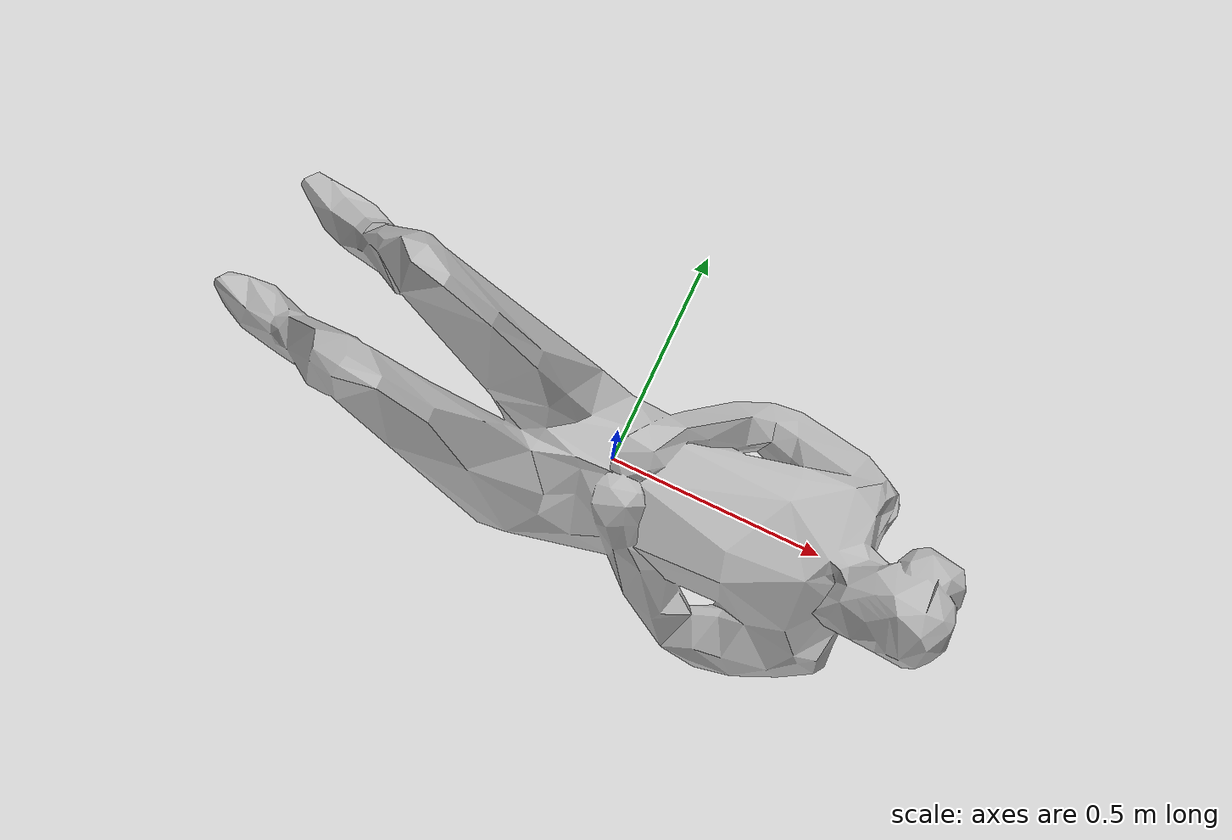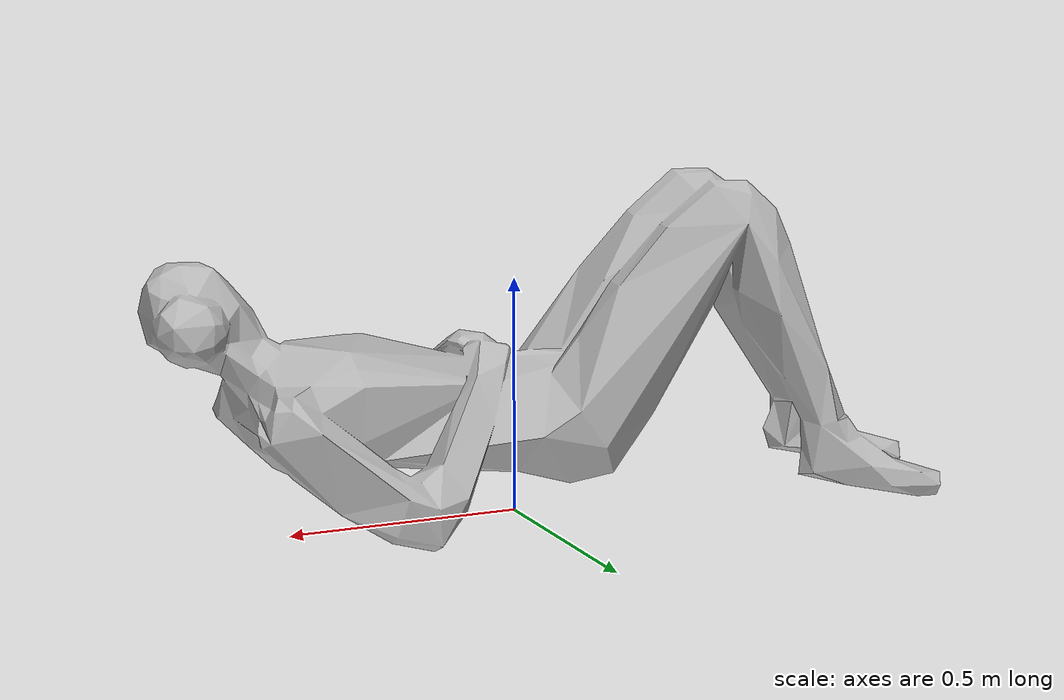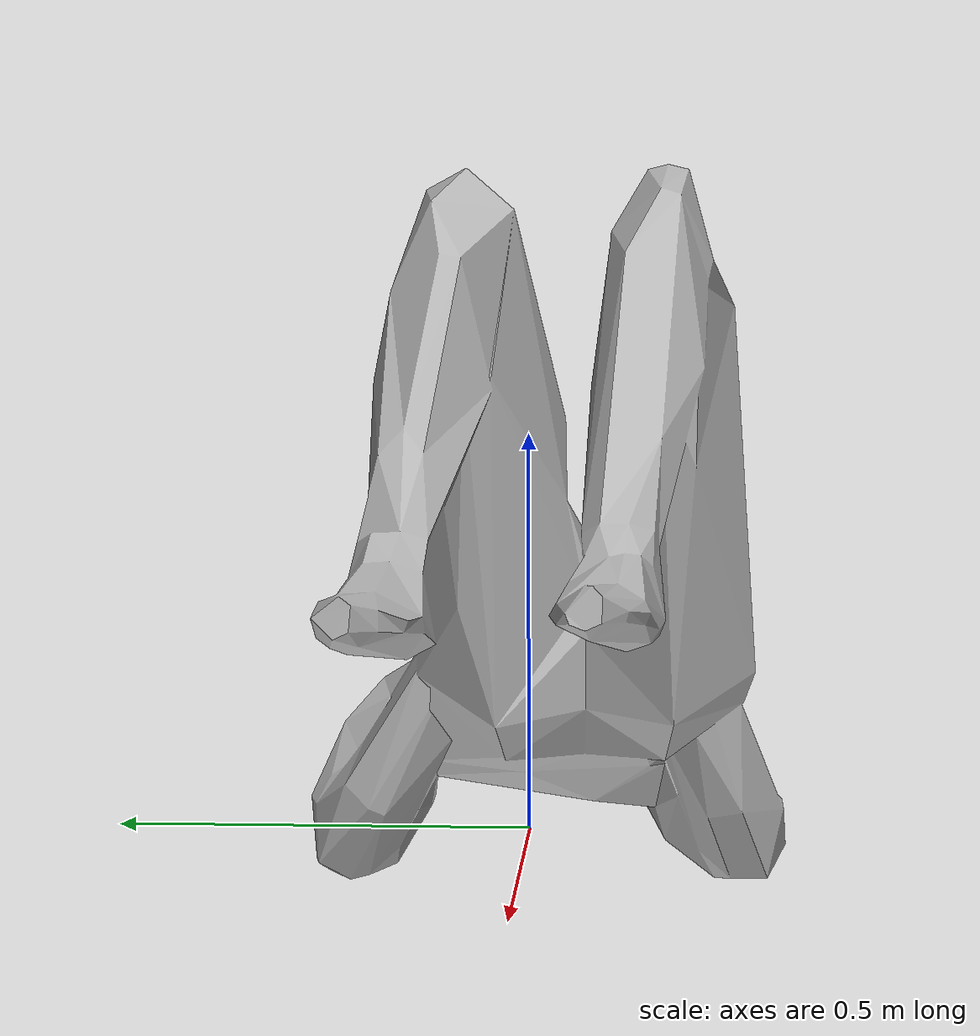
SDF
<?xml version="1.0" ?>
<sdf version="1.6">

  <model name="man lay">
      <pose>0 0 0  0 0 0</pose>
      <static>false</static>
      <link name="man">

        <inertial>
          <mass>100</mass>
        </inertial>

        <collision name="collision">
          <geometry>
            <box>
              <size>2 0.7 0.5</size>
            </box>
          </geometry>
        </collision>

        <visual name="visual">
          <geometry>
            <mesh>
              <uri>model://landscape/man_lay/meshes/man_lay.dae</uri>
            </mesh>
          </geometry>
          <material>
            <script>
              <uri>model://landscape/man_lay/materials/scripts/man_lay.material</uri>
              <name>man_lay</name>
            </script>
          </material>
        </visual>
      </link>
    </model>
</sdf>
